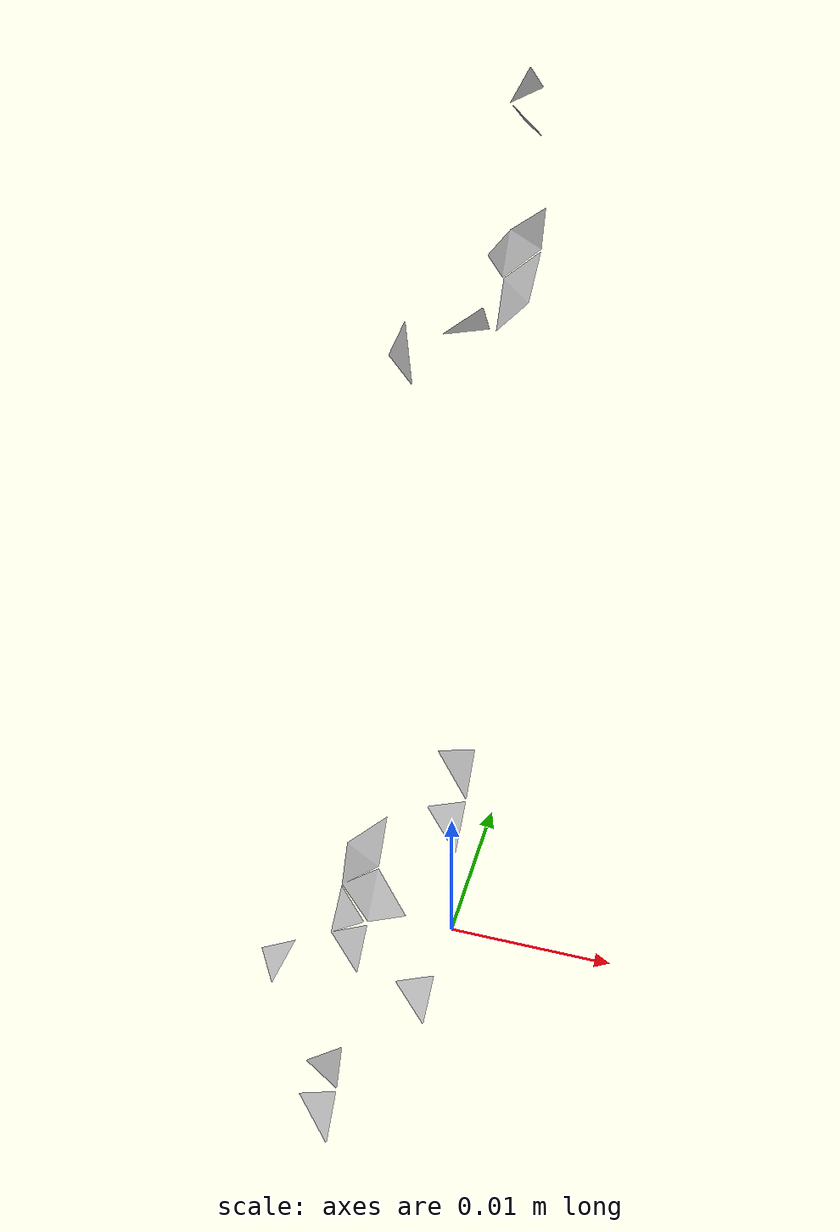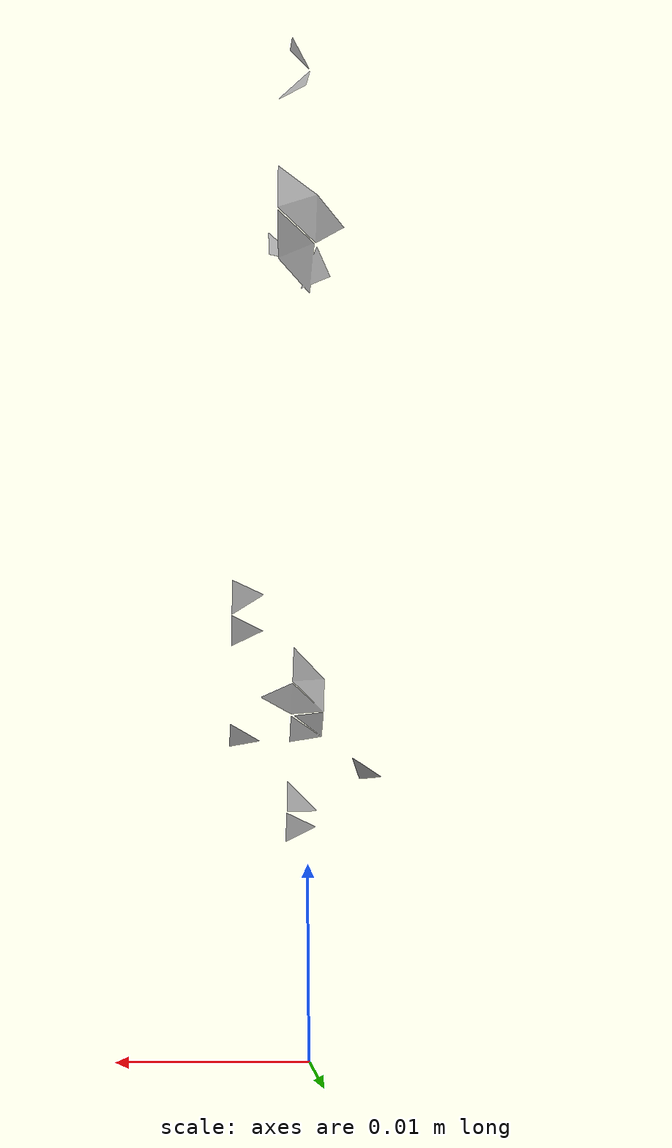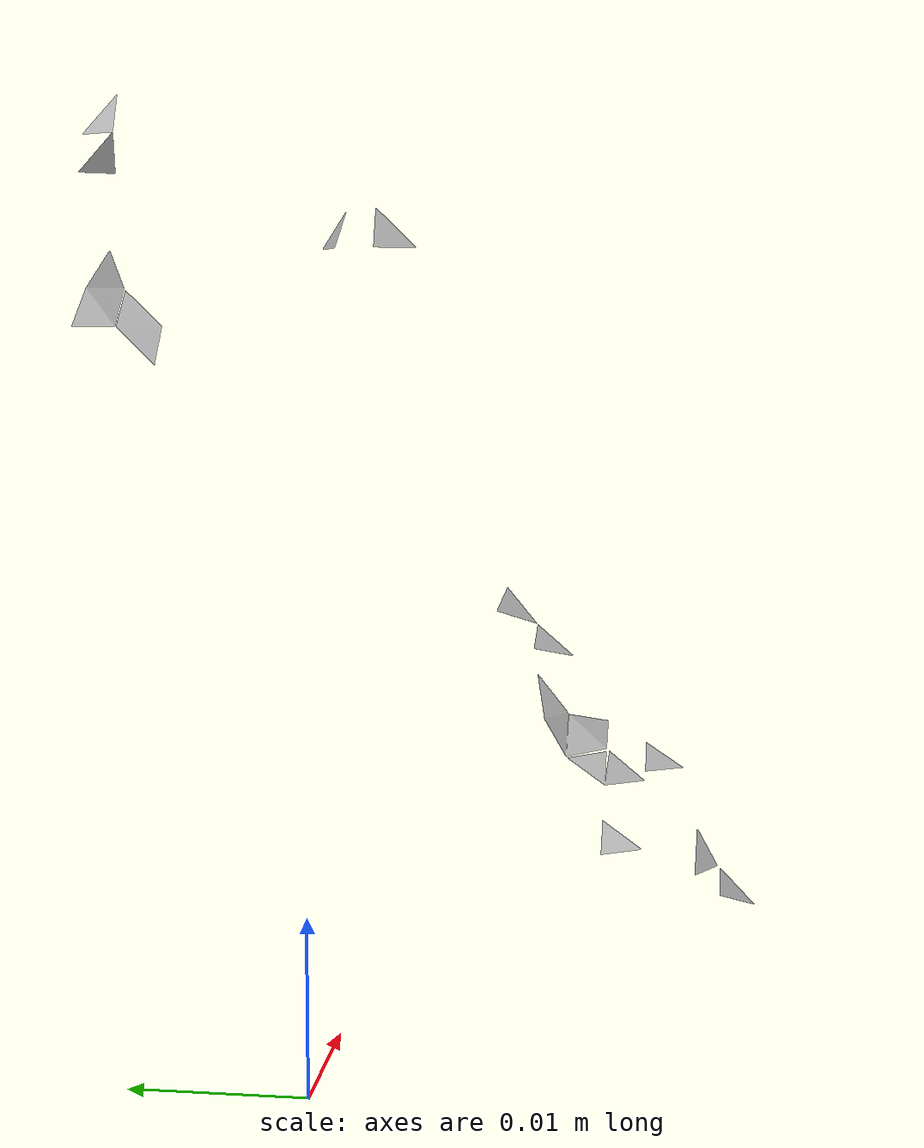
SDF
<?xml version='1.0'?>
<sdf version="1.4">
  <model name="small_clamp">
    <static>false</static>
    <link name="link">
      <inertial>
        <pose>-1.1070941243219883 3.237075752110201 -12.946866593278042 -2.992468443353391 0.2112916832714072 -0.6207993712819055</pose>
        <mass>-9.654201980026167e-09</mass>
        <inertia>
          <ixx>1.7346452101009341e-06</ixx>
          <ixy>-3.5060509200493394e-22</ixy>
          <ixz>-2.793546508666903e-22</ixz>
          <iyy>1.732620549130043e-06</iyy>
          <iyz>-4.723873536146262e-22</iyz>
          <izz>-1.426011755909341e-09</izz>
        </inertia>
      </inertial>
      <collision name="collision">
        <geometry>
          <mesh>
            <!-- Use a downsampled mesh for collisions -->
            <uri>model://049_small_clamp/tsdf/textured.obj</uri>
	        </mesh>
        </geometry>
        <surface>
      </surface>
      </collision>
      <visual name="visual">
        <geometry>
          <mesh>
            <uri>model://049_small_clamp/tsdf/textured.obj</uri>
	        </mesh>
        </geometry>
        <material>
          <script>
            <uri>model://049_small_clamp/small_clamp.material</uri>
            <name>small_clamp</name>
          </script>
        </material>
      </visual>
    </link>
  </model>
</sdf>
